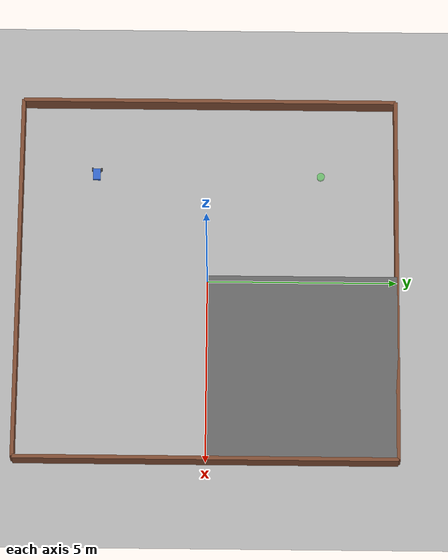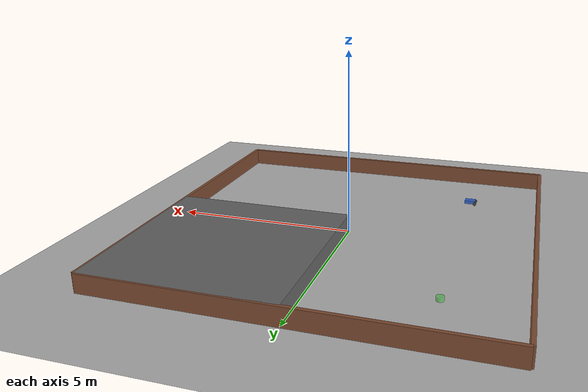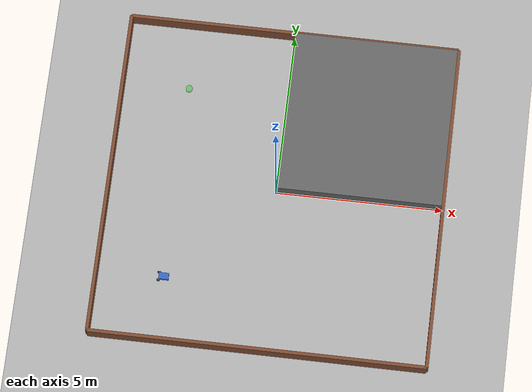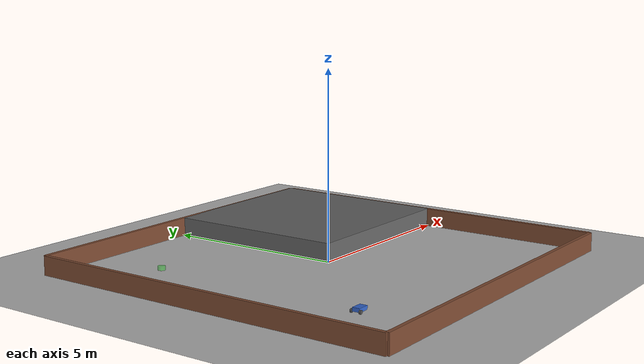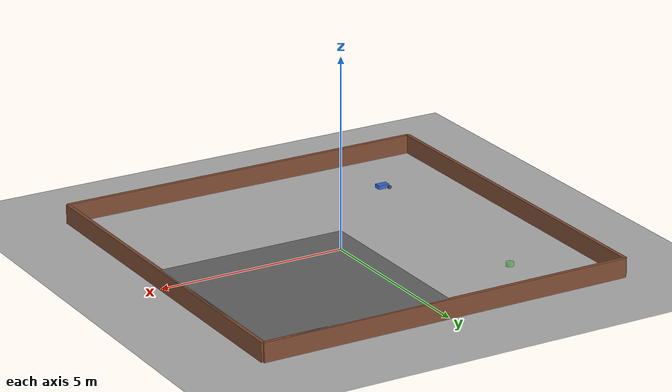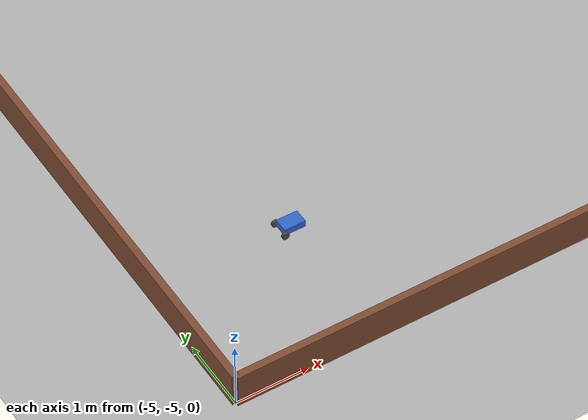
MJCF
<mujoco model="l_shaped_room">
  <option timestep="0.002" gravity="0 0 -9.81"/>

  <asset>
    <texture name="grid" type="2d" builtin="checker" rgb1="0.8 0.8 0.8" rgb2="0.6 0.6 0.6" width="512" height="512"/>
    <material name="grid_mat" texture="grid" texrepeat="8 8" reflectance="0.1"/>
  </asset>

  <worldbody>
    <!-- Ground plane -->
    <geom name="ground" type="plane" size="10 10 0.1" material="grid_mat"/>

    <!-- Boundary walls -->
    <body name="walls" pos="0 0 0.25">
      <geom name="wall_north" type="box" pos="0 5 0" size="5 0.05 0.25" rgba="0.5 0.3 0.2 1"/>
      <geom name="wall_south" type="box" pos="0 -5 0" size="5 0.05 0.25" rgba="0.5 0.3 0.2 1"/>
      <geom name="wall_east" type="box" pos="5 0 0" size="0.05 5 0.25" rgba="0.5 0.3 0.2 1"/>
      <geom name="wall_west" type="box" pos="-5 0 0" size="0.05 5 0.25" rgba="0.5 0.3 0.2 1"/>
    </body>

    <!-- L-shape blocking body: fills upper-right quadrant (x=0..5, y=0..5) -->
    <!-- Center at (2.5, 2.5), half-size (2.5, 2.5) -->
    <body name="l_block" pos="2.5 2.5 0.25">
      <geom name="l_block_geom" type="box" size="2.5 2.5 0.25" rgba="0.4 0.4 0.4 1"/>
    </body>

    <!-- Differential drive robot at (-3, -3) -->
    <body name="robot_chassis" pos="-3 -3 0.1">
      <joint name="robot_free" type="free"/>
      <geom name="chassis" type="box" size="0.15 0.1 0.05" mass="2.0" rgba="0.2 0.4 0.8 1"/>

      <!-- Left wheel -->
      <body name="left_wheel" pos="-0.15 0.12 -0.03">
        <joint name="left_wheel_joint" type="hinge" axis="0 1 0"/>
        <geom name="left_wheel_geom" type="cylinder" size="0.05 0.02" rgba="0.3 0.3 0.3 1"
              euler="90 0 0"/>
      </body>

      <!-- Right wheel -->
      <body name="right_wheel" pos="-0.15 -0.12 -0.03">
        <joint name="right_wheel_joint" type="hinge" axis="0 1 0"/>
        <geom name="right_wheel_geom" type="cylinder" size="0.05 0.02" rgba="0.3 0.3 0.3 1"
              euler="90 0 0"/>
      </body>

      <!-- Caster wheel (passive) -->
      <body name="caster" pos="0.12 0 -0.04">
        <geom name="caster_geom" type="sphere" size="0.02" rgba="0.5 0.5 0.5 1"/>
      </body>
    </body>

    <!-- Goal marker at (-3, 3) -->
    <body name="goal_marker" pos="-3 3 0.05">
      <geom name="goal_geom" type="cylinder" size="0.1 0.05" rgba="0.2 0.8 0.2 0.5"/>
    </body>
  </worldbody>

  <actuator>
    <velocity name="left_motor" joint="left_wheel_joint" kv="1"/>
    <velocity name="right_motor" joint="right_wheel_joint" kv="1"/>
  </actuator>
</mujoco>
